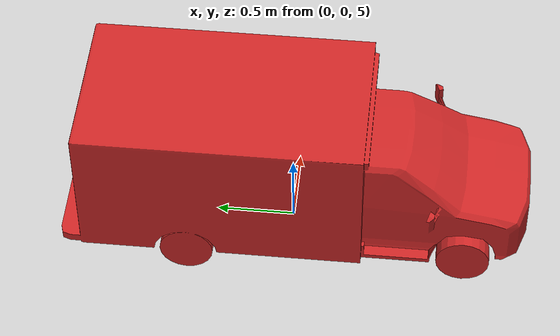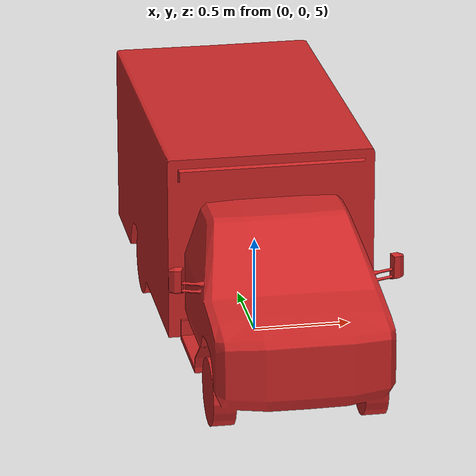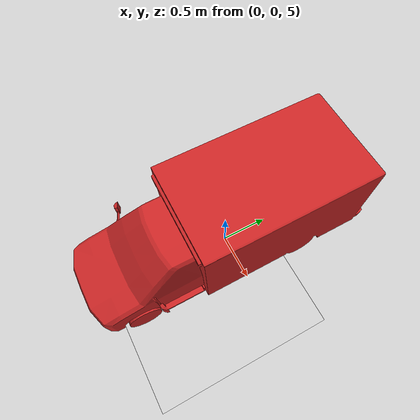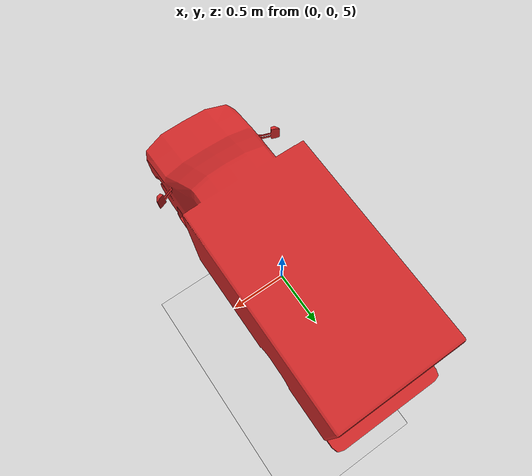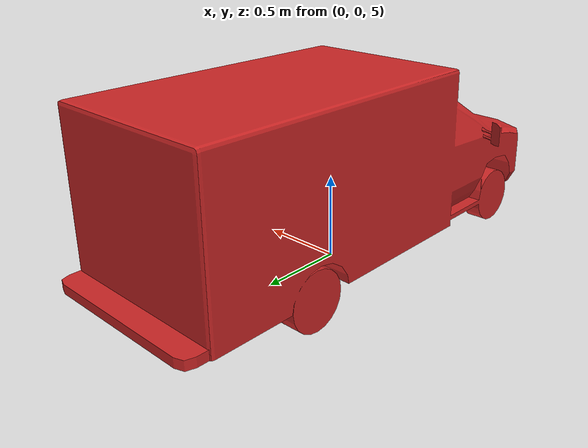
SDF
<?xml version="1.0" ?>
<sdf version="1.4">
  <world name="default">
    <include>
      <uri>model://ground_plane</uri>
    </include>
    <include>
      <uri>model://sun</uri>
    </include>
    <include>
      <uri>model://my_model</uri>
      <static>false</static>
      <pose> 0 0 5 0 0 0 </pose>
    </include>
  </world>
</sdf>

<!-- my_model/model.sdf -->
<sdf version="1.6">
  <model name="my_model">
    <static>true</static>
    <link name="link">
      <collision name="collision">
        <geometry>
          <mesh>
            <scale>0.01 0.01 0.01</scale>
            <uri>model://ambulance/meshes/ambulance.obj</uri>
          </mesh>
        </geometry>
      </collision>
      <visual name="visual">
        <geometry>
          <mesh>
            <scale>0.01 0.01 0.01</scale>
            <uri>model://ambulance/meshes/ambulance.obj</uri>
          </mesh>
        </geometry>
        <material>
          <script>
            <uri>file://media/materials/scripts/gazebo.material</uri>
            <name>Gazebo/Red</name>
          </script>
        </material>
      </visual>
    </link>
  </model>
</sdf>
